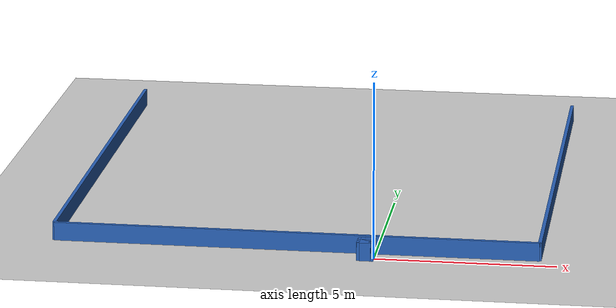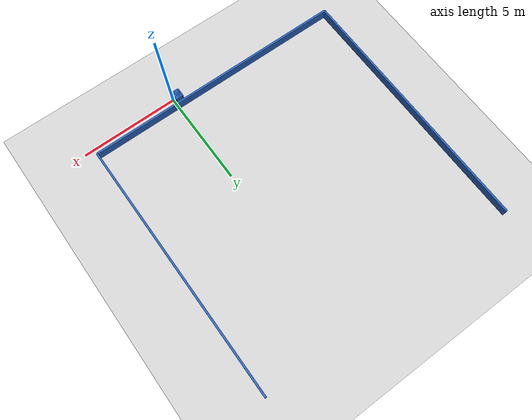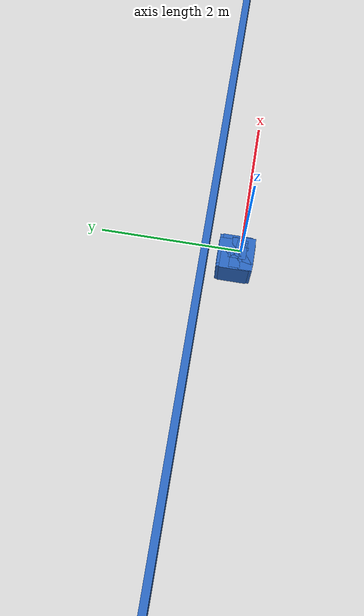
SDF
<?xml version="1.0" ?>
    <sdf version="1.5">
      <world name="default">
        <!-- A global light source -->
        <include>
          <uri>model://sun</uri>
        </include>
        <!-- A ground plane -->
        <include>
          <uri>model://ground_plane</uri>
        </include>

    <model name='libopen_space_final_T2B_91_29'>
      <static>1</static>
      <pose frame=''>-0.225000 0.075000 0.000000 0.000000 0.000000 0.000000</pose>
      <link name='link'>
        <inertial>
          <mass>1</mass>
          <inertia>
            <ixx>0.145833</ixx>
            <ixy>0</ixy>
            <ixz>0</ixz>
            <iyy>0.145833</iyy>
            <iyz>0</iyz>
            <izz>0.125</izz>
          </inertia>
        </inertial>
        <collision name='collision'>
          <geometry>
            <box>
              <size>0.16 0.20 1</size>
            </box>
          </geometry>
          <max_contacts>10</max_contacts>
          <surface>
            <contact>
              <ode/>
            </contact>
            <bounce/>
            <friction>
              <torsional>
                <ode/>
              </torsional>
              <ode/>
            </friction>
          </surface>
        </collision>
        <visual name='visual'>
          <geometry>
            <box>
              <size>0.16 0.20 1</size>
            </box>
          </geometry>
	    <material>
              <ambient>0.152000 0.379000 0.720000 1</ambient>
	      <diffuse>0.152000 0.379000 0.720000 1</diffuse>
          </material>
          <material>
            <script>
              <name>Gazebo/Grey</name>
              <uri>file://media/materials/scripts/gazebo.material</uri>
            </script>
          </material>
        </visual>
        <self_collide>0</self_collide>
        <kinematic>0</kinematic>
        <gravity>1</gravity>
      </link>
      <plugin name='libopen_space_final_T2B_91_29' filename='libopen_space_final_T2B_91_29.so'/>
    </model>

    <model name='libopen_space_final_T2B_105_8'>
      <static>1</static>
      <pose frame=''>-0.225000 0.075000 0.000000 0.000000 0.000000 0.000000</pose>
      <link name='link'>
        <inertial>
          <mass>1</mass>
          <inertia>
            <ixx>0.145833</ixx>
            <ixy>0</ixy>
            <ixz>0</ixz>
            <iyy>0.145833</iyy>
            <iyz>0</iyz>
            <izz>0.125</izz>
          </inertia>
        </inertial>
        <collision name='collision'>
          <geometry>
            <box>
              <size>0.31 0.49 1</size>
            </box>
          </geometry>
          <max_contacts>10</max_contacts>
          <surface>
            <contact>
              <ode/>
            </contact>
            <bounce/>
            <friction>
              <torsional>
                <ode/>
              </torsional>
              <ode/>
            </friction>
          </surface>
        </collision>
        <visual name='visual'>
          <geometry>
            <box>
              <size>0.31 0.49 1</size>
            </box>
          </geometry>
	    <material>
              <ambient>0.152000 0.379000 0.720000 1</ambient>
	      <diffuse>0.152000 0.379000 0.720000 1</diffuse>
          </material>
          <material>
            <script>
              <name>Gazebo/Grey</name>
              <uri>file://media/materials/scripts/gazebo.material</uri>
            </script>
          </material>
        </visual>
        <self_collide>0</self_collide>
        <kinematic>0</kinematic>
        <gravity>1</gravity>
      </link>
      <plugin name='libopen_space_final_T2B_105_8' filename='libopen_space_final_T2B_105_8.so'/>
    </model>

    <model name='libopen_space_final_T2B_73_39'>
      <static>1</static>
      <pose frame=''>-0.225000 0.075000 0.000000 0.000000 0.000000 0.000000</pose>
      <link name='link'>
        <inertial>
          <mass>1</mass>
          <inertia>
            <ixx>0.145833</ixx>
            <ixy>0</ixy>
            <ixz>0</ixz>
            <iyy>0.145833</iyy>
            <iyz>0</iyz>
            <izz>0.125</izz>
          </inertia>
        </inertial>
        <collision name='collision'>
          <geometry>
            <box>
              <size>0.42 0.14 1</size>
            </box>
          </geometry>
          <max_contacts>10</max_contacts>
          <surface>
            <contact>
              <ode/>
            </contact>
            <bounce/>
            <friction>
              <torsional>
                <ode/>
              </torsional>
              <ode/>
            </friction>
          </surface>
        </collision>
        <visual name='visual'>
          <geometry>
            <box>
              <size>0.42 0.14 1</size>
            </box>
          </geometry>
	    <material>
              <ambient>0.152000 0.379000 0.720000 1</ambient>
	      <diffuse>0.152000 0.379000 0.720000 1</diffuse>
          </material>
          <material>
            <script>
              <name>Gazebo/Grey</name>
              <uri>file://media/materials/scripts/gazebo.material</uri>
            </script>
          </material>
        </visual>
        <self_collide>0</self_collide>
        <kinematic>0</kinematic>
        <gravity>1</gravity>
      </link>
      <plugin name='libopen_space_final_T2B_73_39' filename='libopen_space_final_T2B_73_39.so'/>
    </model>

    <model name='libopen_space_final_T2B_91_57'>
      <static>1</static>
      <pose frame=''>-0.225000 0.075000 0.000000 0.000000 0.000000 0.000000</pose>
      <link name='link'>
        <inertial>
          <mass>1</mass>
          <inertia>
            <ixx>0.145833</ixx>
            <ixy>0</ixy>
            <ixz>0</ixz>
            <iyy>0.145833</iyy>
            <iyz>0</iyz>
            <izz>0.125</izz>
          </inertia>
        </inertial>
        <collision name='collision'>
          <geometry>
            <box>
              <size>0.17 0.31 1</size>
            </box>
          </geometry>
          <max_contacts>10</max_contacts>
          <surface>
            <contact>
              <ode/>
            </contact>
            <bounce/>
            <friction>
              <torsional>
                <ode/>
              </torsional>
              <ode/>
            </friction>
          </surface>
        </collision>
        <visual name='visual'>
          <geometry>
            <box>
              <size>0.17 0.31 1</size>
            </box>
          </geometry>
	    <material>
              <ambient>0.152000 0.379000 0.720000 1</ambient>
	      <diffuse>0.152000 0.379000 0.720000 1</diffuse>
          </material>
          <material>
            <script>
              <name>Gazebo/Grey</name>
              <uri>file://media/materials/scripts/gazebo.material</uri>
            </script>
          </material>
        </visual>
        <self_collide>0</self_collide>
        <kinematic>0</kinematic>
        <gravity>1</gravity>
      </link>
      <plugin name='libopen_space_final_T2B_91_57' filename='libopen_space_final_T2B_91_57.so'/>
    </model>

    <model name='libopen_space_final_T2B_96_0'>
      <static>1</static>
      <pose frame=''>-0.225000 0.075000 0.000000 0.000000 0.000000 0.000000</pose>
      <link name='link'>
        <inertial>
          <mass>1</mass>
          <inertia>
            <ixx>0.145833</ixx>
            <ixy>0</ixy>
            <ixz>0</ixz>
            <iyy>0.145833</iyy>
            <iyz>0</iyz>
            <izz>0.125</izz>
          </inertia>
        </inertial>
        <collision name='collision'>
          <geometry>
            <box>
              <size>0.48 0.40 1</size>
            </box>
          </geometry>
          <max_contacts>10</max_contacts>
          <surface>
            <contact>
              <ode/>
            </contact>
            <bounce/>
            <friction>
              <torsional>
                <ode/>
              </torsional>
              <ode/>
            </friction>
          </surface>
        </collision>
        <visual name='visual'>
          <geometry>
            <box>
              <size>0.48 0.40 1</size>
            </box>
          </geometry>
	    <material>
              <ambient>0.152000 0.379000 0.720000 1</ambient>
	      <diffuse>0.152000 0.379000 0.720000 1</diffuse>
          </material>
          <material>
            <script>
              <name>Gazebo/Grey</name>
              <uri>file://media/materials/scripts/gazebo.material</uri>
            </script>
          </material>
        </visual>
        <self_collide>0</self_collide>
        <kinematic>0</kinematic>
        <gravity>1</gravity>
      </link>
      <plugin name='libopen_space_final_T2B_96_0' filename='libopen_space_final_T2B_96_0.so'/>
    </model>

    <model name='libopen_space_final_T2B_123_13'>
      <static>1</static>
      <pose frame=''>-0.225000 0.075000 0.000000 0.000000 0.000000 0.000000</pose>
      <link name='link'>
        <inertial>
          <mass>1</mass>
          <inertia>
            <ixx>0.145833</ixx>
            <ixy>0</ixy>
            <ixz>0</ixz>
            <iyy>0.145833</iyy>
            <iyz>0</iyz>
            <izz>0.125</izz>
          </inertia>
        </inertial>
        <collision name='collision'>
          <geometry>
            <box>
              <size>0.43 0.15 1</size>
            </box>
          </geometry>
          <max_contacts>10</max_contacts>
          <surface>
            <contact>
              <ode/>
            </contact>
            <bounce/>
            <friction>
              <torsional>
                <ode/>
              </torsional>
              <ode/>
            </friction>
          </surface>
        </collision>
        <visual name='visual'>
          <geometry>
            <box>
              <size>0.43 0.15 1</size>
            </box>
          </geometry>
	    <material>
              <ambient>0.152000 0.379000 0.720000 1</ambient>
	      <diffuse>0.152000 0.379000 0.720000 1</diffuse>
          </material>
          <material>
            <script>
              <name>Gazebo/Grey</name>
              <uri>file://media/materials/scripts/gazebo.material</uri>
            </script>
          </material>
        </visual>
        <self_collide>0</self_collide>
        <kinematic>0</kinematic>
        <gravity>1</gravity>
      </link>
      <plugin name='libopen_space_final_T2B_123_13' filename='libopen_space_final_T2B_123_13.so'/>
    </model>

    <model name='libopen_space_final_T2B_67_47'>
      <static>1</static>
      <pose frame=''>-0.225000 0.075000 0.000000 0.000000 0.000000 0.000000</pose>
      <link name='link'>
        <inertial>
          <mass>1</mass>
          <inertia>
            <ixx>0.145833</ixx>
            <ixy>0</ixy>
            <ixz>0</ixz>
            <iyy>0.145833</iyy>
            <iyz>0</iyz>
            <izz>0.125</izz>
          </inertia>
        </inertial>
        <collision name='collision'>
          <geometry>
            <box>
              <size>0.46 0.48 1</size>
            </box>
          </geometry>
          <max_contacts>10</max_contacts>
          <surface>
            <contact>
              <ode/>
            </contact>
            <bounce/>
            <friction>
              <torsional>
                <ode/>
              </torsional>
              <ode/>
            </friction>
          </surface>
        </collision>
        <visual name='visual'>
          <geometry>
            <box>
              <size>0.46 0.48 1</size>
            </box>
          </geometry>
	    <material>
              <ambient>0.152000 0.379000 0.720000 1</ambient>
	      <diffuse>0.152000 0.379000 0.720000 1</diffuse>
          </material>
          <material>
            <script>
              <name>Gazebo/Grey</name>
              <uri>file://media/materials/scripts/gazebo.material</uri>
            </script>
          </material>
        </visual>
        <self_collide>0</self_collide>
        <kinematic>0</kinematic>
        <gravity>1</gravity>
      </link>
      <plugin name='libopen_space_final_T2B_67_47' filename='libopen_space_final_T2B_67_47.so'/>
    </model>

    <model name='libopen_space_final_T2B_122_2'>
      <static>1</static>
      <pose frame=''>-0.225000 0.075000 0.000000 0.000000 0.000000 0.000000</pose>
      <link name='link'>
        <inertial>
          <mass>1</mass>
          <inertia>
            <ixx>0.145833</ixx>
            <ixy>0</ixy>
            <ixz>0</ixz>
            <iyy>0.145833</iyy>
            <iyz>0</iyz>
            <izz>0.125</izz>
          </inertia>
        </inertial>
        <collision name='collision'>
          <geometry>
            <box>
              <size>0.17 0.27 1</size>
            </box>
          </geometry>
          <max_contacts>10</max_contacts>
          <surface>
            <contact>
              <ode/>
            </contact>
            <bounce/>
            <friction>
              <torsional>
                <ode/>
              </torsional>
              <ode/>
            </friction>
          </surface>
        </collision>
        <visual name='visual'>
          <geometry>
            <box>
              <size>0.17 0.27 1</size>
            </box>
          </geometry>
	    <material>
              <ambient>0.152000 0.379000 0.720000 1</ambient>
	      <diffuse>0.152000 0.379000 0.720000 1</diffuse>
          </material>
          <material>
            <script>
              <name>Gazebo/Grey</name>
              <uri>file://media/materials/scripts/gazebo.material</uri>
            </script>
          </material>
        </visual>
        <self_collide>0</self_collide>
        <kinematic>0</kinematic>
        <gravity>1</gravity>
      </link>
      <plugin name='libopen_space_final_T2B_122_2' filename='libopen_space_final_T2B_122_2.so'/>
    </model>

    <model name='libopen_space_final_T2B_105_94'>
      <static>1</static>
      <pose frame=''>-0.225000 0.075000 0.000000 0.000000 0.000000 0.000000</pose>
      <link name='link'>
        <inertial>
          <mass>1</mass>
          <inertia>
            <ixx>0.145833</ixx>
            <ixy>0</ixy>
            <ixz>0</ixz>
            <iyy>0.145833</iyy>
            <iyz>0</iyz>
            <izz>0.125</izz>
          </inertia>
        </inertial>
        <collision name='collision'>
          <geometry>
            <box>
              <size>0.37 0.48 1</size>
            </box>
          </geometry>
          <max_contacts>10</max_contacts>
          <surface>
            <contact>
              <ode/>
            </contact>
            <bounce/>
            <friction>
              <torsional>
                <ode/>
              </torsional>
              <ode/>
            </friction>
          </surface>
        </collision>
        <visual name='visual'>
          <geometry>
            <box>
              <size>0.37 0.48 1</size>
            </box>
          </geometry>
	    <material>
              <ambient>0.152000 0.379000 0.720000 1</ambient>
	      <diffuse>0.152000 0.379000 0.720000 1</diffuse>
          </material>
          <material>
            <script>
              <name>Gazebo/Grey</name>
              <uri>file://media/materials/scripts/gazebo.material</uri>
            </script>
          </material>
        </visual>
        <self_collide>0</self_collide>
        <kinematic>0</kinematic>
        <gravity>1</gravity>
      </link>
      <plugin name='libopen_space_final_T2B_105_94' filename='libopen_space_final_T2B_105_94.so'/>
    </model>

    <model name='libopen_space_final_T2B_55_44'>
      <static>1</static>
      <pose frame=''>-0.225000 0.075000 0.000000 0.000000 0.000000 0.000000</pose>
      <link name='link'>
        <inertial>
          <mass>1</mass>
          <inertia>
            <ixx>0.145833</ixx>
            <ixy>0</ixy>
            <ixz>0</ixz>
            <iyy>0.145833</iyy>
            <iyz>0</iyz>
            <izz>0.125</izz>
          </inertia>
        </inertial>
        <collision name='collision'>
          <geometry>
            <box>
              <size>0.30 0.28 1</size>
            </box>
          </geometry>
          <max_contacts>10</max_contacts>
          <surface>
            <contact>
              <ode/>
            </contact>
            <bounce/>
            <friction>
              <torsional>
                <ode/>
              </torsional>
              <ode/>
            </friction>
          </surface>
        </collision>
        <visual name='visual'>
          <geometry>
            <box>
              <size>0.30 0.28 1</size>
            </box>
          </geometry>
	    <material>
              <ambient>0.152000 0.379000 0.720000 1</ambient>
	      <diffuse>0.152000 0.379000 0.720000 1</diffuse>
          </material>
          <material>
            <script>
              <name>Gazebo/Grey</name>
              <uri>file://media/materials/scripts/gazebo.material</uri>
            </script>
          </material>
        </visual>
        <self_collide>0</self_collide>
        <kinematic>0</kinematic>
        <gravity>1</gravity>
      </link>
      <plugin name='libopen_space_final_T2B_55_44' filename='libopen_space_final_T2B_55_44.so'/>
    </model>

        <model name='bottom_wall'>
          <static>1</static>
          <pose frame=''>-2.25 0.5 0.000000 0.000000 0.000000 1.57079632</pose>
          <link name='link'>
            <inertial>
            <mass>1</mass>
            <inertia>
              <ixx>0.145833</ixx>
              <ixy>0</ixy>
              <ixz>0</ixz>
              <iyy>0.145833</iyy>
              <iyz>0</iyz>
              <izz>0.125</izz>
            </inertia>
            </inertial>
            <collision name='collision'>
            <geometry>
              <box>
              <size>0.1 13.5 1</size>
              </box>
            </geometry>
            <max_contacts>10</max_contacts>
            <surface>
              <contact>
              <ode/>
              </contact>
              <bounce/>
              <friction>
              <torsional>
                <ode/>
              </torsional>
              <ode/>
              </friction>
            </surface>
            </collision>
            <visual name='visual'>
            <geometry>
              <box>
              <size>0.1 13.5 1</size>
              </box>
            </geometry>
            <material>
              <ambient>0.152000 0.379000 0.720000 1</ambient>
            <diffuse>0.152000 0.379000 0.720000 1</diffuse>
            </material>
            <material>
              <script>
              <name>Gazebo/Grey</name>
              <uri>file://media/materials/scripts/gazebo.material</uri>
              </script>
            </material>
            </visual>
            <self_collide>0</self_collide>
            <kinematic>0</kinematic>
            <gravity>1</gravity>
          </link>
        </model>

        <model name='left_wall'>
          <static>1</static>
          <pose frame=''>-9 7.25 0.000000 0.000000 0.000000 0.000000</pose>
          <link name='link'>
            <inertial>
            <mass>1</mass>
            <inertia>
              <ixx>0.145833</ixx>
              <ixy>0</ixy>
              <ixz>0</ixz>
              <iyy>0.145833</iyy>
              <iyz>0</iyz>
              <izz>0.125</izz>
            </inertia>
            </inertial>
            <collision name='collision'>
            <geometry>
              <box>
              <size>0.1 13.5 1</size>
              </box>
            </geometry>
            <max_contacts>10</max_contacts>
            <surface>
              <contact>
              <ode/>
              </contact>
              <bounce/>
              <friction>
              <torsional>
                <ode/>
              </torsional>
              <ode/>
              </friction>
            </surface>
            </collision>
            <visual name='visual'>
            <geometry>
              <box>
              <size>0.1 13.5 1</size>
              </box>
            </geometry>
            <material>
              <ambient>0.152000 0.379000 0.720000 1</ambient>
            <diffuse>0.152000 0.379000 0.720000 1</diffuse>
            </material>
            <material>
              <script>
              <name>Gazebo/Grey</name>
              <uri>file://media/materials/scripts/gazebo.material</uri>
              </script>
            </material>
            </visual>
            <self_collide>0</self_collide>
            <kinematic>0</kinematic>
            <gravity>1</gravity>
          </link>
        </model>

        <model name='right_wall'>
          <static>1</static>
          <pose frame=''>4.5 7.25 0.000000 0.000000 0.000000 0.000000</pose>
          <link name='link'>
            <inertial>
            <mass>1</mass>
            <inertia>
              <ixx>0.145833</ixx>
              <ixy>0</ixy>
              <ixz>0</ixz>
              <iyy>0.145833</iyy>
              <iyz>0</iyz>
              <izz>0.125</izz>
            </inertia>
            </inertial>
            <collision name='collision'>
            <geometry>
              <box>
              <size>0.1 13.5 1</size>
              </box>
            </geometry>
            <max_contacts>10</max_contacts>
            <surface>
              <contact>
              <ode/>
              </contact>
              <bounce/>
              <friction>
              <torsional>
                <ode/>
              </torsional>
              <ode/>
              </friction>
            </surface>
            </collision>
            <visual name='visual'>
            <geometry>
              <box>
              <size>0.1 13.5 1</size>
              </box>
            </geometry>
            <material>
              <ambient>0.152000 0.379000 0.720000 1</ambient>
            <diffuse>0.152000 0.379000 0.720000 1</diffuse>
            </material>
            <material>
              <script>
              <name>Gazebo/Grey</name>
              <uri>file://media/materials/scripts/gazebo.material</uri>
              </script>
            </material>
            </visual>
            <self_collide>0</self_collide>
            <kinematic>0</kinematic>
            <gravity>1</gravity>
          </link>
        </model>

      </world>
    </sdf>"
